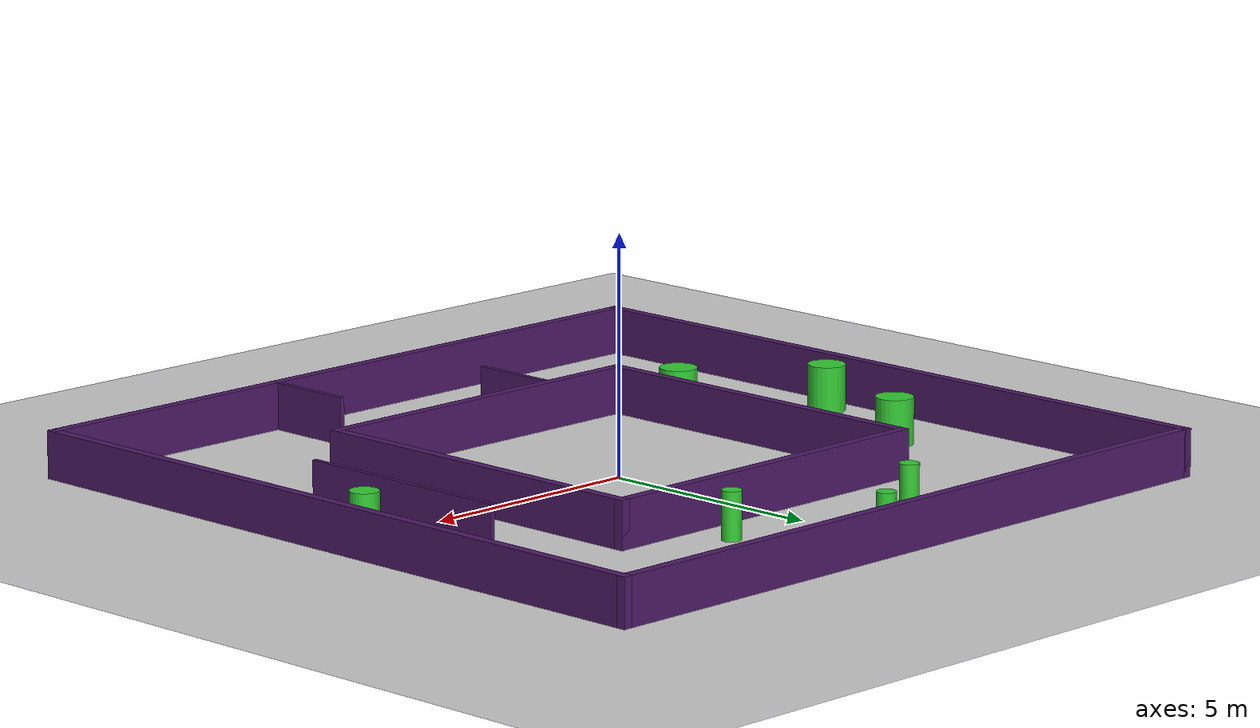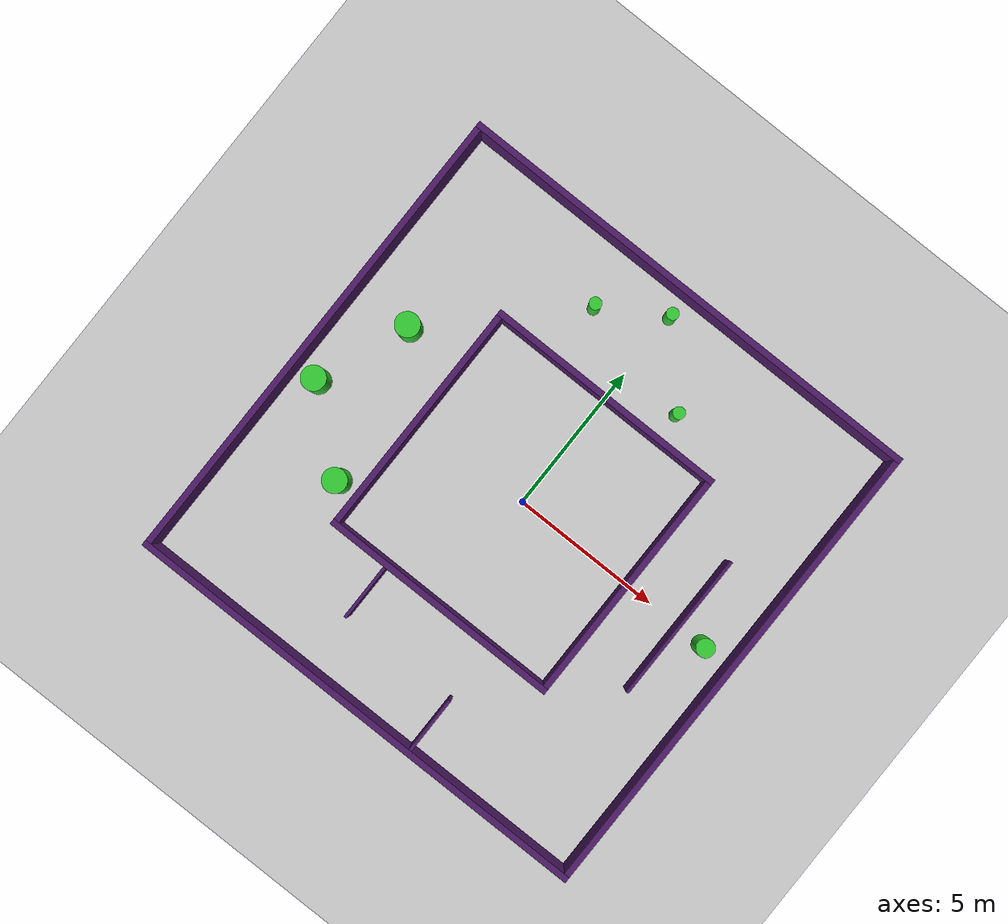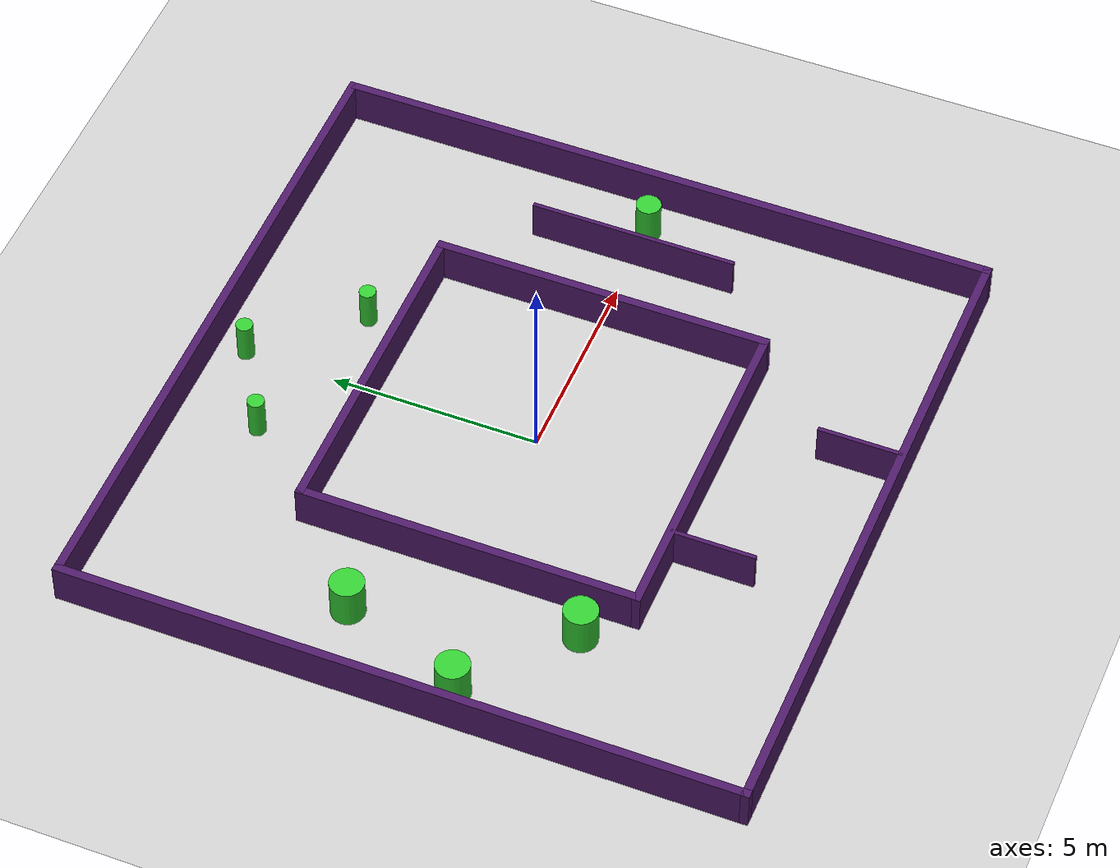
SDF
<?xml version="1.0" ?>
<sdf version="1.8">
  <world name="ftg_boss_world">

    <physics name="1ms" type="ignored">
      <max_step_size>0.001</max_step_size>
      <real_time_factor>1.0</real_time_factor>
    </physics>
    <plugin filename="gz-sim-physics-system" name="gz::sim::systems::Physics"/>
    <plugin filename="gz-sim-user-commands-system" name="gz::sim::systems::UserCommands"/>
    <plugin filename="gz-sim-scene-broadcaster-system" name="gz::sim::systems::SceneBroadcaster"/>
    <plugin filename="gz-sim-sensors-system" name="gz::sim::systems::Sensors">
      <render_engine>ogre2</render_engine>
    </plugin>

    <light type="directional" name="sun">
      <cast_shadows>true</cast_shadows>
      <pose>0 0 10 0 0 0</pose>
      <diffuse>0.9 0.9 0.9 1</diffuse>
      <specular>0.2 0.2 0.2 1</specular>
      <direction>-0.5 0.1 -0.9</direction>
    </light>

    <model name="ground_plane">
      <static>true</static>
      <link name="link">
        <collision name="collision"><geometry><plane><normal>0 0 1</normal><size>100 100</size></plane></geometry></collision>
        <visual name="visual">
          <geometry><plane><normal>0 0 1</normal><size>100 100</size></plane></geometry>
          <material><ambient>0.8 0.8 0.8 1</ambient><diffuse>0.8 0.8 0.8 1</diffuse></material>
        </visual>
      </link>
    </model>

    <!-- CIRCUITO FINAL BOSS                        -->
    <model name="boss_arena">
      <static>true</static>

      <!-- PAREDES EXTERIORES (16x16m - Púrpura) -->
      <link name="out_n"><pose>0 8 0.5 0 0 0</pose><visual name="v"><geometry><box><size>16.2 0.2 1</size></box></geometry><material><ambient>0.3 0.1 0.4 1</ambient></material></visual><collision name="c"><geometry><box><size>16.2 0.2 1</size></box></geometry></collision></link>
      <link name="out_s"><pose>0 -8 0.5 0 0 0</pose><visual name="v"><geometry><box><size>16.2 0.2 1</size></box></geometry><material><ambient>0.3 0.1 0.4 1</ambient></material></visual><collision name="c"><geometry><box><size>16.2 0.2 1</size></box></geometry></collision></link>
      <link name="out_e"><pose>8 0 0.5 0 0 1.5708</pose><visual name="v"><geometry><box><size>16.2 0.2 1</size></box></geometry><material><ambient>0.3 0.1 0.4 1</ambient></material></visual><collision name="c"><geometry><box><size>16.2 0.2 1</size></box></geometry></collision></link>
      <link name="out_w"><pose>-8 0 0.5 0 0 1.5708</pose><visual name="v"><geometry><box><size>16.2 0.2 1</size></box></geometry><material><ambient>0.3 0.1 0.4 1</ambient></material></visual><collision name="c"><geometry><box><size>16.2 0.2 1</size></box></geometry></collision></link>

      <!-- PAREDES INTERIORES (8x8m - Púrpura) -->
      <link name="in_n"><pose>0 4 0.5 0 0 0</pose><visual name="v"><geometry><box><size>8.2 0.2 1</size></box></geometry><material><ambient>0.3 0.1 0.4 1</ambient></material></visual><collision name="c"><geometry><box><size>8.2 0.2 1</size></box></geometry></collision></link>
      <link name="in_s"><pose>0 -4 0.5 0 0 0</pose><visual name="v"><geometry><box><size>8.2 0.2 1</size></box></geometry><material><ambient>0.3 0.1 0.4 1</ambient></material></visual><collision name="c"><geometry><box><size>8.2 0.2 1</size></box></geometry></collision></link>
      <link name="in_e"><pose>4 0 0.5 0 0 1.5708</pose><visual name="v"><geometry><box><size>8.2 0.2 1</size></box></geometry><material><ambient>0.3 0.1 0.4 1</ambient></material></visual><collision name="c"><geometry><box><size>8.2 0.2 1</size></box></geometry></collision></link>
      <link name="in_w"><pose>-4 0 0.5 0 0 1.5708</pose><visual name="v"><geometry><box><size>8.2 0.2 1</size></box></geometry><material><ambient>0.3 0.1 0.4 1</ambient></material></visual><collision name="c"><geometry><box><size>8.2 0.2 1</size></box></geometry></collision></link>

      <!-- ZONA 1: CAMPO DE MINAS (NORTE) -->
      <link name="mine1"><pose>-2 6 0.5 0 0 0</pose><visual name="v"><geometry><cylinder><radius>0.2</radius><length>1</length></cylinder></geometry><material><ambient>0.2 0.8 0.2 1</ambient></material></visual><collision name="c"><geometry><cylinder><radius>0.2</radius><length>1</length></cylinder></geometry></collision></link>
      <link name="mine2"><pose>0 7.2 0.5 0 0 0</pose><visual name="v"><geometry><cylinder><radius>0.2</radius><length>1</length></cylinder></geometry><material><ambient>0.2 0.8 0.2 1</ambient></material></visual><collision name="c"><geometry><cylinder><radius>0.2</radius><length>1</length></cylinder></geometry></collision></link>
      <link name="mine3"><pose>2 5 0.5 0 0 0</pose><visual name="v"><geometry><cylinder><radius>0.2</radius><length>1</length></cylinder></geometry><material><ambient>0.2 0.8 0.2 1</ambient></material></visual><collision name="c"><geometry><cylinder><radius>0.2</radius><length>1</length></cylinder></geometry></collision></link>

      <!-- ZONA 2: LA BIFURCACIÓN (ESTE) -->
      <!-- Pared divisoria que crea dos caminos paralelos -->
      <link name="fork_wall"><pose>6 0 0.5 0 0 1.5708</pose><visual name="v"><geometry><box><size>5 0.1 1</size></box></geometry><material><ambient>0.3 0.1 0.4 1</ambient></material></visual><collision name="c"><geometry><box><size>5 0.1 1</size></box></geometry></collision></link>
      <!-- Obstáculo escondido en la ruta derecha para obligarlo a decidir -->
      <link name="fork_trap"><pose>7 0 0.5 0 0 0</pose><visual name="v"><geometry><cylinder><radius>0.3</radius><length>1</length></cylinder></geometry><material><ambient>0.2 0.8 0.2 1</ambient></material></visual><collision name="c"><geometry><cylinder><radius>0.3</radius><length>1</length></cylinder></geometry></collision></link>

      <!-- ZONA 3: CUELLO DE BOTELLA ZIG-ZAG (SUR) -->
      <link name="zig1"><pose>-2 -5.0 0.5 0 0 1.5708</pose><visual name="v"><geometry><box><size>2 0.1 1</size></box></geometry><material><ambient>0.3 0.1 0.4 1</ambient></material></visual><collision name="c"><geometry><box><size>2 0.1 1</size></box></geometry></collision></link>
      <link name="zig2"><pose>2 -7.0 0.5 0 0 1.5708</pose><visual name="v"><geometry><box><size>2 0.1 1</size></box></geometry><material><ambient>0.3 0.1 0.4 1</ambient></material></visual><collision name="c"><geometry><box><size>2 0.1 1</size></box></geometry></collision></link>

      <!-- ZONA 4: SLALOM DIAGONAL (OESTE) -->
      <link name="slalom1"><pose>-6 2 0.5 0 0 0</pose><visual name="v"><geometry><cylinder><radius>0.4</radius><length>1</length></cylinder></geometry><material><ambient>0.2 0.8 0.2 1</ambient></material></visual><collision name="c"><geometry><cylinder><radius>0.4</radius><length>1</length></cylinder></geometry></collision></link>
      <link name="slalom2"><pose>-7.2 -1 0.5 0 0 0</pose><visual name="v"><geometry><cylinder><radius>0.4</radius><length>1</length></cylinder></geometry><material><ambient>0.2 0.8 0.2 1</ambient></material></visual><collision name="c"><geometry><cylinder><radius>0.4</radius><length>1</length></cylinder></geometry></collision></link>
      <link name="slalom3"><pose>-4.8 -3 0.5 0 0 0</pose><visual name="v"><geometry><cylinder><radius>0.4</radius><length>1</length></cylinder></geometry><material><ambient>0.2 0.8 0.2 1</ambient></material></visual><collision name="c"><geometry><cylinder><radius>0.4</radius><length>1</length></cylinder></geometry></collision></link>

    </model>
  </world>
</sdf>
